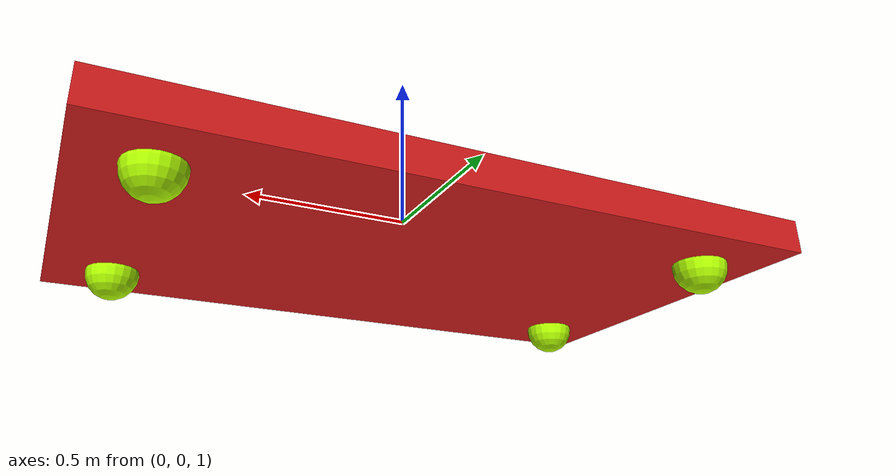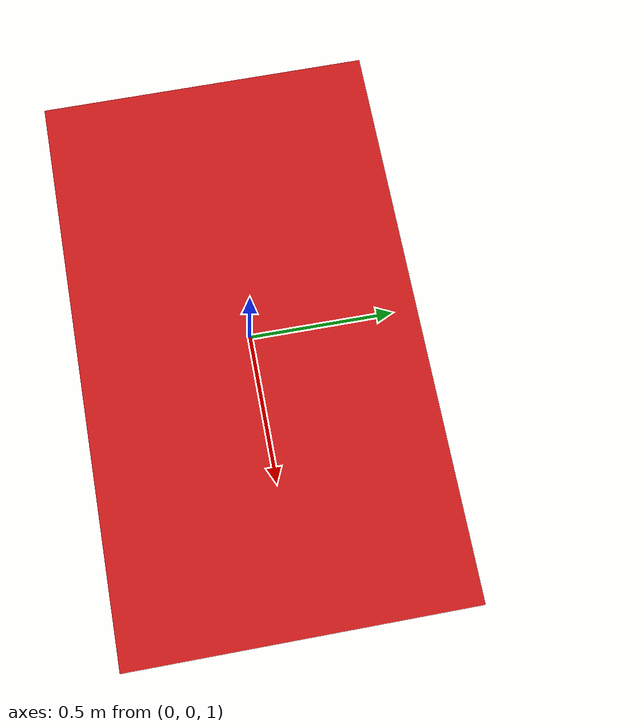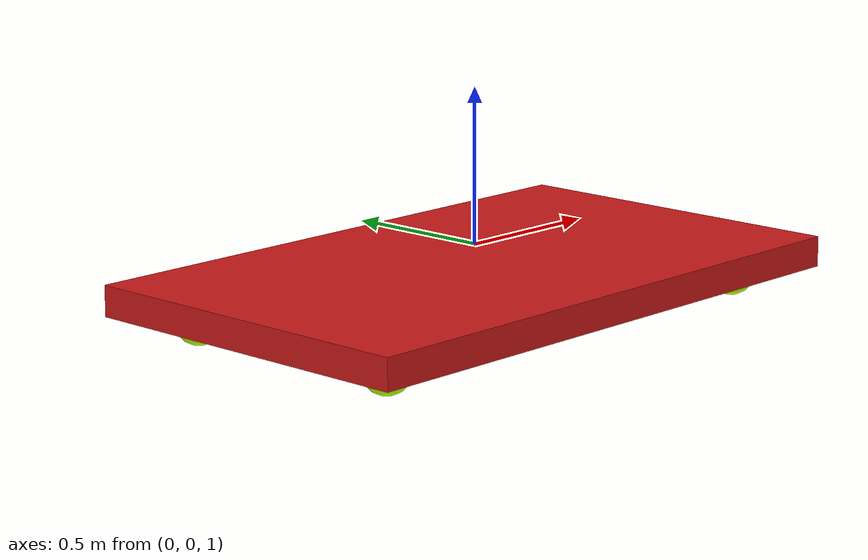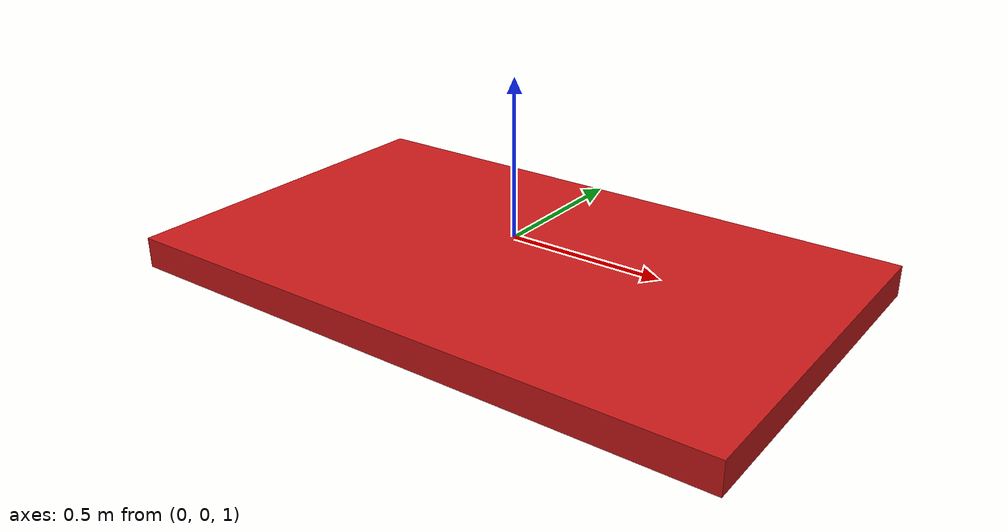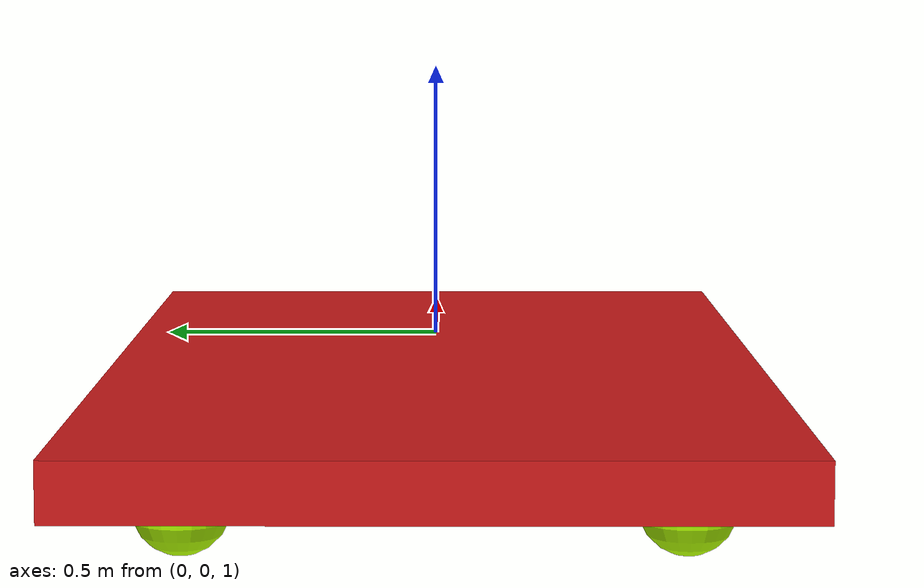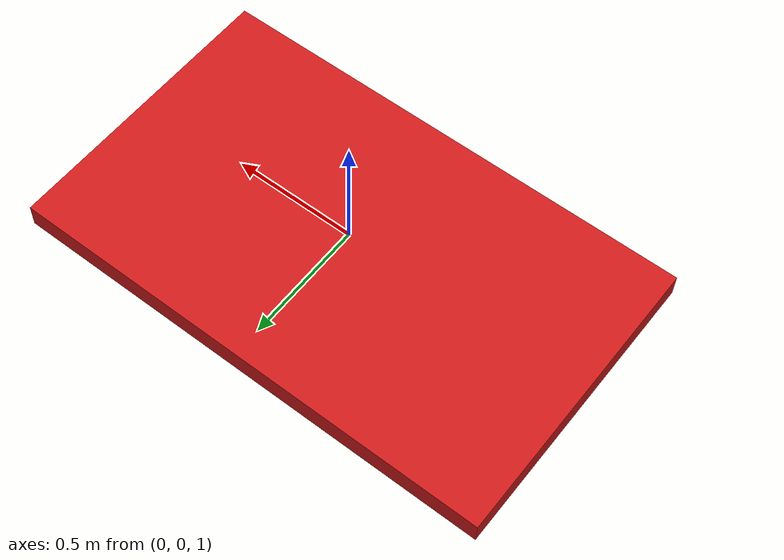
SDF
<?xml version="1.0" ?>
<sdf version="1.8">
    <model name="carro">
      <static>true</static>
      <pose>0 0 0 0 0 0</pose>

      <link name="chassi">
        <pose>0 0 0.9 0 0 0</pose>
        <visual name="visual">
          <geometry><box><size>2.0 1.2 0.1</size></box></geometry>
          <material><ambient>0.8 0.1 0.1 1</ambient><diffuse>0.8 0.1 0.1 1</diffuse></material>
        </visual>
        <collision name="collision">
          <geometry><box><size>2.0 1.2 0.1</size></box></geometry>
        </collision>
      </link>

      <link name="parafuso_1">
        <pose>0.8 0.4 0.84 0 0 0</pose>
        <visual name="visual">
          <geometry><sphere><radius>0.08</radius></sphere></geometry>
          <material><ambient>0.7 1.0 0.0 1</ambient><diffuse>0.7 1.0 0.0 1</diffuse></material>
        </visual>
      </link>

      <link name="parafuso_2">
        <pose>0.8 -0.4 0.84 0 0 0</pose>
        <visual name="visual">
          <geometry><sphere><radius>0.08</radius></sphere></geometry>
          <material><ambient>0.7 1.0 0.0 1</ambient><diffuse>0.7 1.0 0.0 1</diffuse></material>
        </visual>
      </link>

      <link name="parafuso_3">
        <pose>-0.8 0.4 0.84 0 0 0</pose>
        <visual name="visual">
          <geometry><sphere><radius>0.08</radius></sphere></geometry>
          <material><ambient>0.7 1.0 0.0 1</ambient><diffuse>0.7 1.0 0.0 1</diffuse></material>
        </visual>
      </link>

      <link name="parafuso_4">
        <pose>-0.8 -0.4 0.84 0 0 0</pose>
        <visual name="visual">
          <geometry><sphere><radius>0.08</radius></sphere></geometry>
          <material><ambient>0.7 1.0 0.0 1</ambient><diffuse>0.7 1.0 0.0 1</diffuse></material>
        </visual>
      </link>
    </model>
</sdf>
